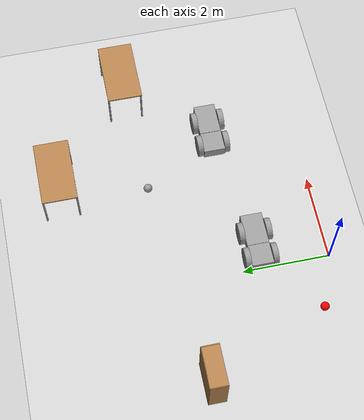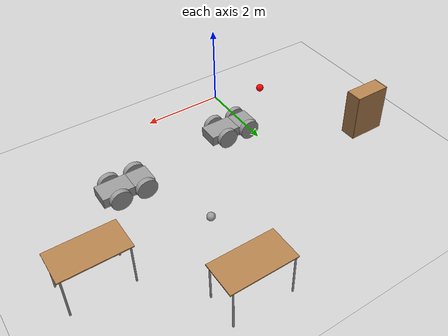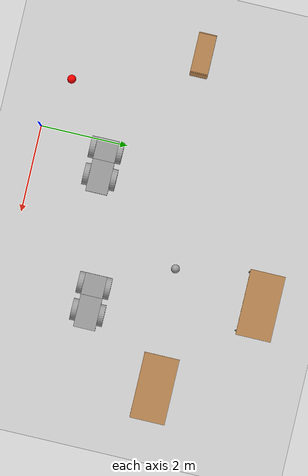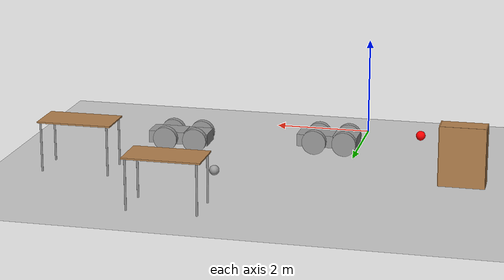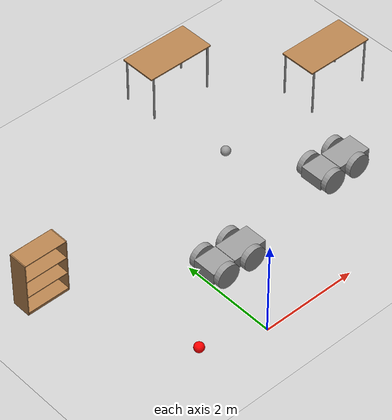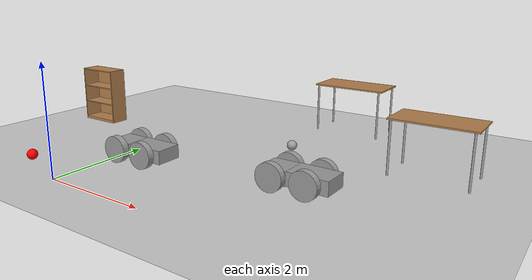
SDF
<sdf version="1.7">
 <world name="default">
  <model name="ground_plane">
   <static>1</static>
   <link name="link">
    <collision name="collision">
     <geometry><plane><normal>0 0 1</normal><size>100 100</size></plane></geometry>
     <surface><friction><ode><mu>100</mu><mu2>50</mu2></ode></friction></surface>
    </collision>
    <visual name="visual">
     <cast_shadows>0</cast_shadows>
     <geometry><plane><normal>0 0 1</normal><size>100 100</size></plane></geometry>
     <material>
      <script><uri>file://media/materials/scripts/gazebo.material</uri><name>Gazebo/Grey</name></script>
     </material>
    </visual>
   </link>
  </model>
  <model name="bookshelf">
   <static>1</static>
   <link name="link">
    <inertial><mass>1</mass></inertial>
    <collision name="back">
     <pose>0 0.005 0.6 0 -0 0</pose>
     <geometry><box><size>0.9 0.01 1.2</size></box></geometry>
    </collision>
    <visual name="visual1">
     <pose>0 0.005 0.6 0 -0 0</pose>
     <geometry><box><size>0.9 0.01 1.2</size></box></geometry>
     <material>
      <script><uri>file://media/materials/scripts/gazebo.material</uri><name>Gazebo/Wood</name></script>
     </material>
    </visual>
    <collision name="left_side">
     <pose>0.45 -0.195 0.6 0 -0 0</pose>
     <geometry><box><size>0.02 0.4 1.2</size></box></geometry>
    </collision>
    <visual name="visual2">
     <pose>0.45 -0.195 0.6 0 -0 0</pose>
     <geometry><box><size>0.02 0.4 1.2</size></box></geometry>
     <material>
      <script><uri>file://media/materials/scripts/gazebo.material</uri><name>Gazebo/Wood</name></script>
     </material>
    </visual>
    <collision name="right_side">
     <pose>-0.45 -0.195 0.6 0 -0 0</pose>
     <geometry><box><size>0.02 0.4 1.2</size></box></geometry>
    </collision>
    <visual name="visual3">
     <pose>-0.45 -0.195 0.6 0 -0 0</pose>
     <geometry><box><size>0.02 0.4 1.2</size></box></geometry>
     <material>
      <script><uri>file://media/materials/scripts/gazebo.material</uri><name>Gazebo/Wood</name></script>
     </material>
    </visual>
    <collision name="bottom">
     <pose>0 -0.195 0.03 0 -0 0</pose>
     <geometry><box><size>0.88 0.4 0.06</size></box></geometry>
    </collision>
    <visual name="visual4">
     <pose>0 -0.195 0.03 0 -0 0</pose>
     <geometry><box><size>0.88 0.4 0.06</size></box></geometry>
     <material>
      <script><uri>file://media/materials/scripts/gazebo.material</uri><name>Gazebo/Wood</name></script>
     </material>
    </visual>
    <collision name="top">
     <pose>0 -0.195 1.19 0 -0 0</pose>
     <geometry><box><size>0.88 0.4 0.02</size></box></geometry>
    </collision>
    <visual name="visual5">
     <pose>0 -0.195 1.19 0 -0 0</pose>
     <geometry><box><size>0.88 0.4 0.02</size></box></geometry>
     <material>
      <script><uri>file://media/materials/scripts/gazebo.material</uri><name>Gazebo/Wood</name></script>
     </material>
    </visual>
    <collision name="low_shelf">
     <pose>0 -0.195 0.43 0 -0 0</pose>
     <geometry><box><size>0.88 0.4 0.02</size></box></geometry>
    </collision>
    <visual name="visual6">
     <pose>0 -0.195 0.43 0 -0 0</pose>
     <geometry><box><size>0.88 0.4 0.02</size></box></geometry>
     <material>
      <script><uri>file://media/materials/scripts/gazebo.material</uri><name>Gazebo/Wood</name></script>
     </material>
    </visual>
    <collision name="high_shelf">
     <pose>0 -0.195 0.8 0 -0 0</pose>
     <geometry><box><size>0.88 0.4 0.02</size></box></geometry>
    </collision>
    <visual name="visual7">
     <pose>0 -0.195 0.8 0 -0 0</pose>
     <geometry><box><size>0.88 0.4 0.02</size></box></geometry>
     <material>
      <script><uri>file://media/materials/scripts/gazebo.material</uri><name>Gazebo/Wood</name></script>
     </material>
    </visual>
   </link>
   <pose>-2.35089 3.40239 0 0 -0 0</pose>
  </model>
  <model name="pj1_robo_1_clone_clone_0">
   <link name="link_0">
    <pose>-0.3125 0 -0.006249 0 -0 0</pose>
    <inertial>
     <mass>1</mass>
     <inertia>
      <ixx>0.166667</ixx>
      <ixy>0</ixy>
      <ixz>0</ixz>
      <iyy>0.166667</iyy>
      <iyz>0</iyz>
      <izz>0.166667</izz>
     </inertia>
    </inertial>
    <visual name="visual">
     <geometry><box><size>0.5 0.5 0.25</size></box></geometry>
     <material>
      <lighting>1</lighting>
      <script><uri>file://media/materials/scripts/gazebo.material</uri><name>Gazebo/Grey</name></script>
      <shader type="pixel"><normal_map>__default__</normal_map></shader>
      <ambient>0.3 0.3 0.3 1</ambient>
      <diffuse>0.7 0.7 0.7 1</diffuse>
      <specular>0.01 0.01 0.01 1</specular>
      <emissive>0 0 0 1</emissive>
     </material>
    </visual>
    <collision name="collision">
     <geometry><box><size>0.5 0.5 0.25</size></box></geometry>
     <surface>
      <friction>
       <ode><mu>1</mu><mu2>1</mu2><fdir1>0 0 0</fdir1><slip1>0</slip1><slip2>0</slip2></ode>
       <torsional>
        <coefficient>1</coefficient>
        <patch_radius>0</patch_radius>
        <surface_radius>0</surface_radius>
        <use_patch_radius>1</use_patch_radius>
        <ode><slip>0</slip></ode>
       </torsional>
      </friction>
      <bounce><restitution_coefficient>0</restitution_coefficient><threshold>1e+06</threshold></bounce>
      <contact>
       <collide_without_contact>0</collide_without_contact>
       <collide_without_contact_bitmask>1</collide_without_contact_bitmask>
       <collide_bitmask>1</collide_bitmask>
       <ode>
        <soft_cfm>0</soft_cfm>
        <soft_erp>0.2</soft_erp>
        <kp>1e+13</kp>
        <kd>1</kd>
        <max_vel>0.01</max_vel>
        <min_depth>0</min_depth>
       </ode>
       <bullet>
        <split_impulse>1</split_impulse>
        <split_impulse_penetration_threshold>-0.01</split_impulse_penetration_threshold>
        <soft_cfm>0</soft_cfm>
        <soft_erp>0.2</soft_erp>
        <kp>1e+13</kp>
        <kd>1</kd>
       </bullet>
      </contact>
     </surface>
    </collision>
   </link>
   <link name="link_0_clone">
    <pose>0.3125 0 0.001251 0 -0 0</pose>
    <inertial>
     <mass>1</mass>
     <inertia>
      <ixx>0.166667</ixx>
      <ixy>0</ixy>
      <ixz>0</ixz>
      <iyy>0.166667</iyy>
      <iyz>0</iyz>
      <izz>0.166667</izz>
     </inertia>
    </inertial>
    <visual name="visual">
     <geometry><box><size>0.75 0.5 0.25</size></box></geometry>
     <material>
      <lighting>1</lighting>
      <script><uri>file://media/materials/scripts/gazebo.material</uri><name>Gazebo/Grey</name></script>
      <shader type="pixel"><normal_map>__default__</normal_map></shader>
      <ambient>0.3 0.3 0.3 1</ambient>
      <diffuse>0.7 0.7 0.7 1</diffuse>
      <specular>0.01 0.01 0.01 1</specular>
      <emissive>0 0 0 1</emissive>
     </material>
    </visual>
    <collision name="collision">
     <geometry><box><size>0.75 0.5 0.25</size></box></geometry>
     <surface>
      <friction>
       <ode><mu>1</mu><mu2>1</mu2><fdir1>0 0 0</fdir1><slip1>0</slip1><slip2>0</slip2></ode>
       <torsional>
        <coefficient>1</coefficient>
        <patch_radius>0</patch_radius>
        <surface_radius>0</surface_radius>
        <use_patch_radius>1</use_patch_radius>
        <ode><slip>0</slip></ode>
       </torsional>
      </friction>
      <bounce><restitution_coefficient>0</restitution_coefficient><threshold>1e+06</threshold></bounce>
      <contact>
       <collide_without_contact>0</collide_without_contact>
       <collide_without_contact_bitmask>1</collide_without_contact_bitmask>
       <collide_bitmask>1</collide_bitmask>
       <ode>
        <soft_cfm>0</soft_cfm>
        <soft_erp>0.2</soft_erp>
        <kp>1e+13</kp>
        <kd>1</kd>
        <max_vel>0.01</max_vel>
        <min_depth>0</min_depth>
       </ode>
       <bullet>
        <split_impulse>1</split_impulse>
        <split_impulse_penetration_threshold>-0.01</split_impulse_penetration_threshold>
        <soft_cfm>0</soft_cfm>
        <soft_erp>0.2</soft_erp>
        <kp>1e+13</kp>
        <kd>1</kd>
       </bullet>
      </contact>
     </surface>
    </collision>
   </link>
   <link name="link_1">
    <pose>-0.3125 -0.312524 0.001247 1.5707 -0 0</pose>
    <inertial>
     <mass>1</mass>
     <inertia><ixx>0.145833</ixx><ixy>0</ixy><ixz>0</ixz><iyy>0.145833</iyy><iyz>0</iyz><izz>0.125</izz></inertia>
    </inertial>
    <visual name="visual">
     <geometry><cylinder><radius>0.25</radius><length>0.125</length></cylinder></geometry>
     <material>
      <lighting>1</lighting>
      <script><uri>file://media/materials/scripts/gazebo.material</uri><name>Gazebo/Grey</name></script>
      <shader type="pixel"><normal_map>__default__</normal_map></shader>
      <ambient>0.3 0.3 0.3 1</ambient>
      <diffuse>0.7 0.7 0.7 1</diffuse>
      <specular>0.01 0.01 0.01 1</specular>
      <emissive>0 0 0 1</emissive>
     </material>
    </visual>
    <collision name="collision">
     <geometry><cylinder><radius>0.25</radius><length>0.125</length></cylinder></geometry>
     <surface>
      <friction>
       <ode><mu>1</mu><mu2>1</mu2><fdir1>0 0 0</fdir1><slip1>0</slip1><slip2>0</slip2></ode>
       <torsional>
        <coefficient>1</coefficient>
        <patch_radius>0</patch_radius>
        <surface_radius>0</surface_radius>
        <use_patch_radius>1</use_patch_radius>
        <ode><slip>0</slip></ode>
       </torsional>
      </friction>
      <bounce><restitution_coefficient>0</restitution_coefficient><threshold>1e+06</threshold></bounce>
      <contact>
       <collide_without_contact>0</collide_without_contact>
       <collide_without_contact_bitmask>1</collide_without_contact_bitmask>
       <collide_bitmask>1</collide_bitmask>
       <ode>
        <soft_cfm>0</soft_cfm>
        <soft_erp>0.2</soft_erp>
        <kp>1e+13</kp>
        <kd>1</kd>
        <max_vel>0.01</max_vel>
        <min_depth>0</min_depth>
       </ode>
       <bullet>
        <split_impulse>1</split_impulse>
        <split_impulse_penetration_threshold>-0.01</split_impulse_penetration_threshold>
        <soft_cfm>0</soft_cfm>
        <soft_erp>0.2</soft_erp>
        <kp>1e+13</kp>
        <kd>1</kd>
       </bullet>
      </contact>
     </surface>
    </collision>
   </link>
   <link name="link_1_clone">
    <pose>-0.3125 0.312524 0.001251 1.5707 -0 0</pose>
    <inertial>
     <mass>1</mass>
     <inertia><ixx>0.145833</ixx><ixy>0</ixy><ixz>0</ixz><iyy>0.145833</iyy><iyz>0</iyz><izz>0.125</izz></inertia>
    </inertial>
    <visual name="visual">
     <geometry><cylinder><radius>0.25</radius><length>0.125</length></cylinder></geometry>
     <material>
      <lighting>1</lighting>
      <script><uri>file://media/materials/scripts/gazebo.material</uri><name>Gazebo/Grey</name></script>
      <shader type="pixel"><normal_map>__default__</normal_map></shader>
      <ambient>0.3 0.3 0.3 1</ambient>
      <diffuse>0.7 0.7 0.7 1</diffuse>
      <specular>0.01 0.01 0.01 1</specular>
      <emissive>0 0 0 1</emissive>
     </material>
    </visual>
    <collision name="collision">
     <geometry><cylinder><radius>0.25</radius><length>0.125</length></cylinder></geometry>
     <surface>
      <friction>
       <ode><mu>1</mu><mu2>1</mu2><fdir1>0 0 0</fdir1><slip1>0</slip1><slip2>0</slip2></ode>
       <torsional>
        <coefficient>1</coefficient>
        <patch_radius>0</patch_radius>
        <surface_radius>0</surface_radius>
        <use_patch_radius>1</use_patch_radius>
        <ode><slip>0</slip></ode>
       </torsional>
      </friction>
      <bounce><restitution_coefficient>0</restitution_coefficient><threshold>1e+06</threshold></bounce>
      <contact>
       <collide_without_contact>0</collide_without_contact>
       <collide_without_contact_bitmask>1</collide_without_contact_bitmask>
       <collide_bitmask>1</collide_bitmask>
       <ode>
        <soft_cfm>0</soft_cfm>
        <soft_erp>0.2</soft_erp>
        <kp>1e+13</kp>
        <kd>1</kd>
        <max_vel>0.01</max_vel>
        <min_depth>0</min_depth>
       </ode>
       <bullet>
        <split_impulse>1</split_impulse>
        <split_impulse_penetration_threshold>-0.01</split_impulse_penetration_threshold>
        <soft_cfm>0</soft_cfm>
        <soft_erp>0.2</soft_erp>
        <kp>1e+13</kp>
        <kd>1</kd>
       </bullet>
      </contact>
     </surface>
    </collision>
   </link>
   <link name="link_1_clone_0">
    <pose>0.3125 -0.312524 0.001251 1.5707 -0 0</pose>
    <inertial>
     <mass>1</mass>
     <inertia><ixx>0.145833</ixx><ixy>0</ixy><ixz>0</ixz><iyy>0.145833</iyy><iyz>0</iyz><izz>0.125</izz></inertia>
    </inertial>
    <visual name="visual">
     <geometry><cylinder><radius>0.25</radius><length>0.125</length></cylinder></geometry>
     <material>
      <lighting>1</lighting>
      <script><uri>file://media/materials/scripts/gazebo.material</uri><name>Gazebo/Grey</name></script>
      <shader type="pixel"><normal_map>__default__</normal_map></shader>
      <ambient>0.3 0.3 0.3 1</ambient>
      <diffuse>0.7 0.7 0.7 1</diffuse>
      <specular>0.01 0.01 0.01 1</specular>
      <emissive>0 0 0 1</emissive>
     </material>
    </visual>
    <collision name="collision">
     <geometry><cylinder><radius>0.25</radius><length>0.125</length></cylinder></geometry>
     <surface>
      <friction>
       <ode><mu>1</mu><mu2>1</mu2><fdir1>0 0 0</fdir1><slip1>0</slip1><slip2>0</slip2></ode>
       <torsional>
        <coefficient>1</coefficient>
        <patch_radius>0</patch_radius>
        <surface_radius>0</surface_radius>
        <use_patch_radius>1</use_patch_radius>
        <ode><slip>0</slip></ode>
       </torsional>
      </friction>
      <bounce><restitution_coefficient>0</restitution_coefficient><threshold>1e+06</threshold></bounce>
      <contact>
       <collide_without_contact>0</collide_without_contact>
       <collide_without_contact_bitmask>1</collide_without_contact_bitmask>
       <collide_bitmask>1</collide_bitmask>
       <ode>
        <soft_cfm>0</soft_cfm>
        <soft_erp>0.2</soft_erp>
        <kp>1e+13</kp>
        <kd>1</kd>
        <max_vel>0.01</max_vel>
        <min_depth>0</min_depth>
       </ode>
       <bullet>
        <split_impulse>1</split_impulse>
        <split_impulse_penetration_threshold>-0.01</split_impulse_penetration_threshold>
        <soft_cfm>0</soft_cfm>
        <soft_erp>0.2</soft_erp>
        <kp>1e+13</kp>
        <kd>1</kd>
       </bullet>
      </contact>
     </surface>
    </collision>
   </link>
   <link name="link_1_clone_1">
    <pose>0.3125 0.312524 0.001251 1.5707 -0 0</pose>
    <inertial>
     <mass>1</mass>
     <inertia><ixx>0.145833</ixx><ixy>0</ixy><ixz>0</ixz><iyy>0.145833</iyy><iyz>0</iyz><izz>0.125</izz></inertia>
    </inertial>
    <visual name="visual">
     <geometry><cylinder><radius>0.25</radius><length>0.125</length></cylinder></geometry>
     <material>
      <lighting>1</lighting>
      <script><uri>file://media/materials/scripts/gazebo.material</uri><name>Gazebo/Grey</name></script>
      <shader type="pixel"><normal_map>__default__</normal_map></shader>
      <ambient>0.3 0.3 0.3 1</ambient>
      <diffuse>0.7 0.7 0.7 1</diffuse>
      <specular>0.01 0.01 0.01 1</specular>
      <emissive>0 0 0 1</emissive>
     </material>
    </visual>
    <collision name="collision">
     <geometry><cylinder><radius>0.25</radius><length>0.125</length></cylinder></geometry>
     <surface>
      <friction>
       <ode><mu>1</mu><mu2>1</mu2><fdir1>0 0 0</fdir1><slip1>0</slip1><slip2>0</slip2></ode>
       <torsional>
        <coefficient>1</coefficient>
        <patch_radius>0</patch_radius>
        <surface_radius>0</surface_radius>
        <use_patch_radius>1</use_patch_radius>
        <ode><slip>0</slip></ode>
       </torsional>
      </friction>
      <bounce><restitution_coefficient>0</restitution_coefficient><threshold>1e+06</threshold></bounce>
      <contact>
       <collide_without_contact>0</collide_without_contact>
       <collide_without_contact_bitmask>1</collide_without_contact_bitmask>
       <collide_bitmask>1</collide_bitmask>
       <ode>
        <soft_cfm>0</soft_cfm>
        <soft_erp>0.2</soft_erp>
        <kp>1e+13</kp>
        <kd>1</kd>
        <max_vel>0.01</max_vel>
        <min_depth>0</min_depth>
       </ode>
       <bullet>
        <split_impulse>1</split_impulse>
        <split_impulse_penetration_threshold>-0.01</split_impulse_penetration_threshold>
        <soft_cfm>0</soft_cfm>
        <soft_erp>0.2</soft_erp>
        <kp>1e+13</kp>
        <kd>1</kd>
       </bullet>
      </contact>
     </surface>
    </collision>
   </link>
   <joint name="link_0_JOINT_1" type="fixed">
    <parent>link_0</parent>
    <child>link_0_clone</child>
    <physics>
     <ode><limit><cfm>0</cfm><erp>0.2</erp></limit><suspension><cfm>0</cfm><erp>0.2</erp></suspension></ode>
    </physics>
   </joint>
   <joint name="link_0_JOINT_2" type="revolute">
    <parent>link_0</parent>
    <child>link_1</child>
    <axis>
     <xyz>1 0 0</xyz>
     <limit>
      <lower>-1.79769e+308</lower>
      <upper>1.79769e+308</upper>
      <effort>-1</effort>
      <velocity>-1</velocity>
     </limit>
     <dynamics>
      <spring_reference>0</spring_reference>
      <spring_stiffness>0</spring_stiffness>
      <damping>0</damping>
     </dynamics>
    </axis>
    <physics>
     <ode><limit><cfm>0</cfm><erp>0.2</erp></limit><suspension><cfm>0</cfm><erp>0.2</erp></suspension></ode>
    </physics>
   </joint>
   <joint name="link_0_JOINT_3" type="revolute">
    <parent>link_0</parent>
    <child>link_1_clone</child>
    <axis>
     <xyz>1 0 0</xyz>
     <limit>
      <lower>-1.79769e+308</lower>
      <upper>1.79769e+308</upper>
      <effort>-1</effort>
      <velocity>-1</velocity>
     </limit>
     <dynamics>
      <spring_reference>0</spring_reference>
      <spring_stiffness>0</spring_stiffness>
      <damping>0</damping>
     </dynamics>
    </axis>
    <physics>
     <ode><limit><cfm>0</cfm><erp>0.2</erp></limit><suspension><cfm>0</cfm><erp>0.2</erp></suspension></ode>
    </physics>
   </joint>
   <joint name="link_0_clone_JOINT_4" type="revolute">
    <parent>link_0_clone</parent>
    <child>link_1_clone_1</child>
    <axis>
     <xyz>1 0 0</xyz>
     <limit>
      <lower>-1.79769e+308</lower>
      <upper>1.79769e+308</upper>
      <effort>-1</effort>
      <velocity>-1</velocity>
     </limit>
     <dynamics>
      <spring_reference>0</spring_reference>
      <spring_stiffness>0</spring_stiffness>
      <damping>0</damping>
     </dynamics>
    </axis>
    <physics>
     <ode><limit><cfm>0</cfm><erp>0.2</erp></limit><suspension><cfm>0</cfm><erp>0.2</erp></suspension></ode>
    </physics>
   </joint>
   <joint name="link_0_clone_JOINT_5" type="revolute">
    <parent>link_0_clone</parent>
    <child>link_1_clone_0</child>
    <axis>
     <xyz>1 0 0</xyz>
     <limit>
      <lower>-1.79769e+308</lower>
      <upper>1.79769e+308</upper>
      <effort>-1</effort>
      <velocity>-1</velocity>
     </limit>
     <dynamics>
      <spring_reference>0</spring_reference>
      <spring_stiffness>0</spring_stiffness>
      <damping>0</damping>
     </dynamics>
    </axis>
    <physics>
     <ode><limit><cfm>0</cfm><erp>0.2</erp></limit><suspension><cfm>0</cfm><erp>0.2</erp></suspension></ode>
    </physics>
   </joint>
   <static>0</static>
   <pose>0.519218 1.56404 0.24875 -3e-06 6e-06 0.000481</pose>
  </model>
  <model name="pj1_robo_1_clone_clone_1">
   <link name="link_0">
    <pose>-0.3125 0 -0.006249 0 -0 0</pose>
    <inertial>
     <mass>1</mass>
     <inertia>
      <ixx>0.166667</ixx>
      <ixy>0</ixy>
      <ixz>0</ixz>
      <iyy>0.166667</iyy>
      <iyz>0</iyz>
      <izz>0.166667</izz>
     </inertia>
    </inertial>
    <visual name="visual">
     <geometry><box><size>0.5 0.5 0.25</size></box></geometry>
     <material>
      <lighting>1</lighting>
      <script><uri>file://media/materials/scripts/gazebo.material</uri><name>Gazebo/Grey</name></script>
      <shader type="pixel"><normal_map>__default__</normal_map></shader>
      <ambient>0.3 0.3 0.3 1</ambient>
      <diffuse>0.7 0.7 0.7 1</diffuse>
      <specular>0.01 0.01 0.01 1</specular>
      <emissive>0 0 0 1</emissive>
     </material>
    </visual>
    <collision name="collision">
     <geometry><box><size>0.5 0.5 0.25</size></box></geometry>
     <surface>
      <friction>
       <ode><mu>1</mu><mu2>1</mu2><fdir1>0 0 0</fdir1><slip1>0</slip1><slip2>0</slip2></ode>
       <torsional>
        <coefficient>1</coefficient>
        <patch_radius>0</patch_radius>
        <surface_radius>0</surface_radius>
        <use_patch_radius>1</use_patch_radius>
        <ode><slip>0</slip></ode>
       </torsional>
      </friction>
      <bounce><restitution_coefficient>0</restitution_coefficient><threshold>1e+06</threshold></bounce>
      <contact>
       <collide_without_contact>0</collide_without_contact>
       <collide_without_contact_bitmask>1</collide_without_contact_bitmask>
       <collide_bitmask>1</collide_bitmask>
       <ode>
        <soft_cfm>0</soft_cfm>
        <soft_erp>0.2</soft_erp>
        <kp>1e+13</kp>
        <kd>1</kd>
        <max_vel>0.01</max_vel>
        <min_depth>0</min_depth>
       </ode>
       <bullet>
        <split_impulse>1</split_impulse>
        <split_impulse_penetration_threshold>-0.01</split_impulse_penetration_threshold>
        <soft_cfm>0</soft_cfm>
        <soft_erp>0.2</soft_erp>
        <kp>1e+13</kp>
        <kd>1</kd>
       </bullet>
      </contact>
     </surface>
    </collision>
   </link>
   <link name="link_0_clone">
    <pose>0.3125 0 0.001251 0 -0 0</pose>
    <inertial>
     <mass>1</mass>
     <inertia>
      <ixx>0.166667</ixx>
      <ixy>0</ixy>
      <ixz>0</ixz>
      <iyy>0.166667</iyy>
      <iyz>0</iyz>
      <izz>0.166667</izz>
     </inertia>
    </inertial>
    <visual name="visual">
     <geometry><box><size>0.75 0.5 0.25</size></box></geometry>
     <material>
      <lighting>1</lighting>
      <script><uri>file://media/materials/scripts/gazebo.material</uri><name>Gazebo/Grey</name></script>
      <shader type="pixel"><normal_map>__default__</normal_map></shader>
      <ambient>0.3 0.3 0.3 1</ambient>
      <diffuse>0.7 0.7 0.7 1</diffuse>
      <specular>0.01 0.01 0.01 1</specular>
      <emissive>0 0 0 1</emissive>
     </material>
    </visual>
    <collision name="collision">
     <geometry><box><size>0.75 0.5 0.25</size></box></geometry>
     <surface>
      <friction>
       <ode><mu>1</mu><mu2>1</mu2><fdir1>0 0 0</fdir1><slip1>0</slip1><slip2>0</slip2></ode>
       <torsional>
        <coefficient>1</coefficient>
        <patch_radius>0</patch_radius>
        <surface_radius>0</surface_radius>
        <use_patch_radius>1</use_patch_radius>
        <ode><slip>0</slip></ode>
       </torsional>
      </friction>
      <bounce><restitution_coefficient>0</restitution_coefficient><threshold>1e+06</threshold></bounce>
      <contact>
       <collide_without_contact>0</collide_without_contact>
       <collide_without_contact_bitmask>1</collide_without_contact_bitmask>
       <collide_bitmask>1</collide_bitmask>
       <ode>
        <soft_cfm>0</soft_cfm>
        <soft_erp>0.2</soft_erp>
        <kp>1e+13</kp>
        <kd>1</kd>
        <max_vel>0.01</max_vel>
        <min_depth>0</min_depth>
       </ode>
       <bullet>
        <split_impulse>1</split_impulse>
        <split_impulse_penetration_threshold>-0.01</split_impulse_penetration_threshold>
        <soft_cfm>0</soft_cfm>
        <soft_erp>0.2</soft_erp>
        <kp>1e+13</kp>
        <kd>1</kd>
       </bullet>
      </contact>
     </surface>
    </collision>
   </link>
   <link name="link_1">
    <pose>-0.3125 -0.312524 0.001247 1.5707 -0 0</pose>
    <inertial>
     <mass>1</mass>
     <inertia><ixx>0.145833</ixx><ixy>0</ixy><ixz>0</ixz><iyy>0.145833</iyy><iyz>0</iyz><izz>0.125</izz></inertia>
    </inertial>
    <visual name="visual">
     <geometry><cylinder><radius>0.25</radius><length>0.125</length></cylinder></geometry>
     <material>
      <lighting>1</lighting>
      <script><uri>file://media/materials/scripts/gazebo.material</uri><name>Gazebo/Grey</name></script>
      <shader type="pixel"><normal_map>__default__</normal_map></shader>
      <ambient>0.3 0.3 0.3 1</ambient>
      <diffuse>0.7 0.7 0.7 1</diffuse>
      <specular>0.01 0.01 0.01 1</specular>
      <emissive>0 0 0 1</emissive>
     </material>
    </visual>
    <collision name="collision">
     <geometry><cylinder><radius>0.25</radius><length>0.125</length></cylinder></geometry>
     <surface>
      <friction>
       <ode><mu>1</mu><mu2>1</mu2><fdir1>0 0 0</fdir1><slip1>0</slip1><slip2>0</slip2></ode>
       <torsional>
        <coefficient>1</coefficient>
        <patch_radius>0</patch_radius>
        <surface_radius>0</surface_radius>
        <use_patch_radius>1</use_patch_radius>
        <ode><slip>0</slip></ode>
       </torsional>
      </friction>
      <bounce><restitution_coefficient>0</restitution_coefficient><threshold>1e+06</threshold></bounce>
      <contact>
       <collide_without_contact>0</collide_without_contact>
       <collide_without_contact_bitmask>1</collide_without_contact_bitmask>
       <collide_bitmask>1</collide_bitmask>
       <ode>
        <soft_cfm>0</soft_cfm>
        <soft_erp>0.2</soft_erp>
        <kp>1e+13</kp>
        <kd>1</kd>
        <max_vel>0.01</max_vel>
        <min_depth>0</min_depth>
       </ode>
       <bullet>
        <split_impulse>1</split_impulse>
        <split_impulse_penetration_threshold>-0.01</split_impulse_penetration_threshold>
        <soft_cfm>0</soft_cfm>
        <soft_erp>0.2</soft_erp>
        <kp>1e+13</kp>
        <kd>1</kd>
       </bullet>
      </contact>
     </surface>
    </collision>
   </link>
   <link name="link_1_clone">
    <pose>-0.3125 0.312524 0.001251 1.5707 -0 0</pose>
    <inertial>
     <mass>1</mass>
     <inertia><ixx>0.145833</ixx><ixy>0</ixy><ixz>0</ixz><iyy>0.145833</iyy><iyz>0</iyz><izz>0.125</izz></inertia>
    </inertial>
    <visual name="visual">
     <geometry><cylinder><radius>0.25</radius><length>0.125</length></cylinder></geometry>
     <material>
      <lighting>1</lighting>
      <script><uri>file://media/materials/scripts/gazebo.material</uri><name>Gazebo/Grey</name></script>
      <shader type="pixel"><normal_map>__default__</normal_map></shader>
      <ambient>0.3 0.3 0.3 1</ambient>
      <diffuse>0.7 0.7 0.7 1</diffuse>
      <specular>0.01 0.01 0.01 1</specular>
      <emissive>0 0 0 1</emissive>
     </material>
    </visual>
    <collision name="collision">
     <geometry><cylinder><radius>0.25</radius><length>0.125</length></cylinder></geometry>
     <surface>
      <friction>
       <ode><mu>1</mu><mu2>1</mu2><fdir1>0 0 0</fdir1><slip1>0</slip1><slip2>0</slip2></ode>
       <torsional>
        <coefficient>1</coefficient>
        <patch_radius>0</patch_radius>
        <surface_radius>0</surface_radius>
        <use_patch_radius>1</use_patch_radius>
        <ode><slip>0</slip></ode>
       </torsional>
      </friction>
      <bounce><restitution_coefficient>0</restitution_coefficient><threshold>1e+06</threshold></bounce>
      <contact>
       <collide_without_contact>0</collide_without_contact>
       <collide_without_contact_bitmask>1</collide_without_contact_bitmask>
       <collide_bitmask>1</collide_bitmask>
       <ode>
        <soft_cfm>0</soft_cfm>
        <soft_erp>0.2</soft_erp>
        <kp>1e+13</kp>
        <kd>1</kd>
        <max_vel>0.01</max_vel>
        <min_depth>0</min_depth>
       </ode>
       <bullet>
        <split_impulse>1</split_impulse>
        <split_impulse_penetration_threshold>-0.01</split_impulse_penetration_threshold>
        <soft_cfm>0</soft_cfm>
        <soft_erp>0.2</soft_erp>
        <kp>1e+13</kp>
        <kd>1</kd>
       </bullet>
      </contact>
     </surface>
    </collision>
   </link>
   <link name="link_1_clone_0">
    <pose>0.3125 -0.312524 0.001251 1.5707 -0 0</pose>
    <inertial>
     <mass>1</mass>
     <inertia><ixx>0.145833</ixx><ixy>0</ixy><ixz>0</ixz><iyy>0.145833</iyy><iyz>0</iyz><izz>0.125</izz></inertia>
    </inertial>
    <visual name="visual">
     <geometry><cylinder><radius>0.25</radius><length>0.125</length></cylinder></geometry>
     <material>
      <lighting>1</lighting>
      <script><uri>file://media/materials/scripts/gazebo.material</uri><name>Gazebo/Grey</name></script>
      <shader type="pixel"><normal_map>__default__</normal_map></shader>
      <ambient>0.3 0.3 0.3 1</ambient>
      <diffuse>0.7 0.7 0.7 1</diffuse>
      <specular>0.01 0.01 0.01 1</specular>
      <emissive>0 0 0 1</emissive>
     </material>
    </visual>
    <collision name="collision">
     <geometry><cylinder><radius>0.25</radius><length>0.125</length></cylinder></geometry>
     <surface>
      <friction>
       <ode><mu>1</mu><mu2>1</mu2><fdir1>0 0 0</fdir1><slip1>0</slip1><slip2>0</slip2></ode>
       <torsional>
        <coefficient>1</coefficient>
        <patch_radius>0</patch_radius>
        <surface_radius>0</surface_radius>
        <use_patch_radius>1</use_patch_radius>
        <ode><slip>0</slip></ode>
       </torsional>
      </friction>
      <bounce><restitution_coefficient>0</restitution_coefficient><threshold>1e+06</threshold></bounce>
      <contact>
       <collide_without_contact>0</collide_without_contact>
       <collide_without_contact_bitmask>1</collide_without_contact_bitmask>
       <collide_bitmask>1</collide_bitmask>
       <ode>
        <soft_cfm>0</soft_cfm>
        <soft_erp>0.2</soft_erp>
        <kp>1e+13</kp>
        <kd>1</kd>
        <max_vel>0.01</max_vel>
        <min_depth>0</min_depth>
       </ode>
       <bullet>
        <split_impulse>1</split_impulse>
        <split_impulse_penetration_threshold>-0.01</split_impulse_penetration_threshold>
        <soft_cfm>0</soft_cfm>
        <soft_erp>0.2</soft_erp>
        <kp>1e+13</kp>
        <kd>1</kd>
       </bullet>
      </contact>
     </surface>
    </collision>
   </link>
   <link name="link_1_clone_1">
    <pose>0.3125 0.312524 0.001251 1.5707 -0 0</pose>
    <inertial>
     <mass>1</mass>
     <inertia><ixx>0.145833</ixx><ixy>0</ixy><ixz>0</ixz><iyy>0.145833</iyy><iyz>0</iyz><izz>0.125</izz></inertia>
    </inertial>
    <visual name="visual">
     <geometry><cylinder><radius>0.25</radius><length>0.125</length></cylinder></geometry>
     <material>
      <lighting>1</lighting>
      <script><uri>file://media/materials/scripts/gazebo.material</uri><name>Gazebo/Grey</name></script>
      <shader type="pixel"><normal_map>__default__</normal_map></shader>
      <ambient>0.3 0.3 0.3 1</ambient>
      <diffuse>0.7 0.7 0.7 1</diffuse>
      <specular>0.01 0.01 0.01 1</specular>
      <emissive>0 0 0 1</emissive>
     </material>
    </visual>
    <collision name="collision">
     <geometry><cylinder><radius>0.25</radius><length>0.125</length></cylinder></geometry>
     <surface>
      <friction>
       <ode><mu>1</mu><mu2>1</mu2><fdir1>0 0 0</fdir1><slip1>0</slip1><slip2>0</slip2></ode>
       <torsional>
        <coefficient>1</coefficient>
        <patch_radius>0</patch_radius>
        <surface_radius>0</surface_radius>
        <use_patch_radius>1</use_patch_radius>
        <ode><slip>0</slip></ode>
       </torsional>
      </friction>
      <bounce><restitution_coefficient>0</restitution_coefficient><threshold>1e+06</threshold></bounce>
      <contact>
       <collide_without_contact>0</collide_without_contact>
       <collide_without_contact_bitmask>1</collide_without_contact_bitmask>
       <collide_bitmask>1</collide_bitmask>
       <ode>
        <soft_cfm>0</soft_cfm>
        <soft_erp>0.2</soft_erp>
        <kp>1e+13</kp>
        <kd>1</kd>
        <max_vel>0.01</max_vel>
        <min_depth>0</min_depth>
       </ode>
       <bullet>
        <split_impulse>1</split_impulse>
        <split_impulse_penetration_threshold>-0.01</split_impulse_penetration_threshold>
        <soft_cfm>0</soft_cfm>
        <soft_erp>0.2</soft_erp>
        <kp>1e+13</kp>
        <kd>1</kd>
       </bullet>
      </contact>
     </surface>
    </collision>
   </link>
   <joint name="link_0_JOINT_1" type="fixed">
    <parent>link_0</parent>
    <child>link_0_clone</child>
    <physics>
     <ode><limit><cfm>0</cfm><erp>0.2</erp></limit><suspension><cfm>0</cfm><erp>0.2</erp></suspension></ode>
    </physics>
   </joint>
   <joint name="link_0_JOINT_2" type="revolute">
    <parent>link_0</parent>
    <child>link_1</child>
    <axis>
     <xyz>1 0 0</xyz>
     <limit>
      <lower>-1.79769e+308</lower>
      <upper>1.79769e+308</upper>
      <effort>-1</effort>
      <velocity>-1</velocity>
     </limit>
     <dynamics>
      <spring_reference>0</spring_reference>
      <spring_stiffness>0</spring_stiffness>
      <damping>0</damping>
     </dynamics>
    </axis>
    <physics>
     <ode><limit><cfm>0</cfm><erp>0.2</erp></limit><suspension><cfm>0</cfm><erp>0.2</erp></suspension></ode>
    </physics>
   </joint>
   <joint name="link_0_JOINT_3" type="revolute">
    <parent>link_0</parent>
    <child>link_1_clone</child>
    <axis>
     <xyz>1 0 0</xyz>
     <limit>
      <lower>-1.79769e+308</lower>
      <upper>1.79769e+308</upper>
      <effort>-1</effort>
      <velocity>-1</velocity>
     </limit>
     <dynamics>
      <spring_reference>0</spring_reference>
      <spring_stiffness>0</spring_stiffness>
      <damping>0</damping>
     </dynamics>
    </axis>
    <physics>
     <ode><limit><cfm>0</cfm><erp>0.2</erp></limit><suspension><cfm>0</cfm><erp>0.2</erp></suspension></ode>
    </physics>
   </joint>
   <joint name="link_0_clone_JOINT_4" type="revolute">
    <parent>link_0_clone</parent>
    <child>link_1_clone_1</child>
    <axis>
     <xyz>1 0 0</xyz>
     <limit>
      <lower>-1.79769e+308</lower>
      <upper>1.79769e+308</upper>
      <effort>-1</effort>
      <velocity>-1</velocity>
     </limit>
     <dynamics>
      <spring_reference>0</spring_reference>
      <spring_stiffness>0</spring_stiffness>
      <damping>0</damping>
     </dynamics>
    </axis>
    <physics>
     <ode><limit><cfm>0</cfm><erp>0.2</erp></limit><suspension><cfm>0</cfm><erp>0.2</erp></suspension></ode>
    </physics>
   </joint>
   <joint name="link_0_clone_JOINT_5" type="revolute">
    <parent>link_0_clone</parent>
    <child>link_1_clone_0</child>
    <axis>
     <xyz>1 0 0</xyz>
     <limit>
      <lower>-1.79769e+308</lower>
      <upper>1.79769e+308</upper>
      <effort>-1</effort>
      <velocity>-1</velocity>
     </limit>
     <dynamics>
      <spring_reference>0</spring_reference>
      <spring_stiffness>0</spring_stiffness>
      <damping>0</damping>
     </dynamics>
    </axis>
    <physics>
     <ode><limit><cfm>0</cfm><erp>0.2</erp></limit><suspension><cfm>0</cfm><erp>0.2</erp></suspension></ode>
    </physics>
   </joint>
   <static>0</static>
   <pose>3.56588 1.99921 0.24875 -3e-06 6e-06 0.000488</pose>
  </model>
  <model name="table">
   <static>1</static>
   <link name="link">
    <collision name="surface">
     <pose>0 0 1 0 -0 0</pose>
     <geometry><box><size>1.5 0.8 0.03</size></box></geometry>
     <surface><friction><ode><mu>0.6</mu><mu2>0.6</mu2></ode></friction></surface>
    </collision>
    <visual name="visual1">
     <pose>0 0 1 0 -0 0</pose>
     <geometry><box><size>1.5 0.8 0.03</size></box></geometry>
     <material>
      <script><uri>file://media/materials/scripts/gazebo.material</uri><name>Gazebo/Wood</name></script>
     </material>
    </visual>
    <collision name="front_left_leg">
     <pose>0.68 0.38 0.5 0 -0 0</pose>
     <geometry><cylinder><radius>0.02</radius><length>1</length></cylinder></geometry>
    </collision>
    <visual name="front_left_leg">
     <pose>0.68 0.38 0.5 0 -0 0</pose>
     <geometry><cylinder><radius>0.02</radius><length>1</length></cylinder></geometry>
     <material>
      <script><uri>file://media/materials/scripts/gazebo.material</uri><name>Gazebo/Grey</name></script>
     </material>
    </visual>
    <collision name="front_right_leg">
     <pose>0.68 -0.38 0.5 0 -0 0</pose>
     <geometry><cylinder><radius>0.02</radius><length>1</length></cylinder></geometry>
    </collision>
    <visual name="front_right_leg">
     <pose>0.68 -0.38 0.5 0 -0 0</pose>
     <geometry><cylinder><radius>0.02</radius><length>1</length></cylinder></geometry>
     <material>
      <script><uri>file://media/materials/scripts/gazebo.material</uri><name>Gazebo/Grey</name></script>
     </material>
    </visual>
    <collision name="back_right_leg">
     <pose>-0.68 -0.38 0.5 0 -0 0</pose>
     <geometry><cylinder><radius>0.02</radius><length>1</length></cylinder></geometry>
    </collision>
    <visual name="back_right_leg">
     <pose>-0.68 -0.38 0.5 0 -0 0</pose>
     <geometry><cylinder><radius>0.02</radius><length>1</length></cylinder></geometry>
     <material>
      <script><uri>file://media/materials/scripts/gazebo.material</uri><name>Gazebo/Grey</name></script>
     </material>
    </visual>
    <collision name="back_left_leg">
     <pose>-0.68 0.38 0.5 0 -0 0</pose>
     <geometry><cylinder><radius>0.02</radius><length>1</length></cylinder></geometry>
    </collision>
    <visual name="back_left_leg">
     <pose>-0.68 0.38 0.5 0 -0 0</pose>
     <geometry><cylinder><radius>0.02</radius><length>1</length></cylinder></geometry>
     <material>
      <script><uri>file://media/materials/scripts/gazebo.material</uri><name>Gazebo/Grey</name></script>
     </material>
    </visual>
   </link>
   <pose>5.17823 3.85378 0 0 -0 0</pose>
  </model>
  <model name="table_0">
   <static>1</static>
   <link name="link">
    <collision name="surface">
     <pose>0 0 1 0 -0 0</pose>
     <geometry><box><size>1.5 0.8 0.03</size></box></geometry>
     <surface><friction><ode><mu>0.6</mu><mu2>0.6</mu2></ode></friction></surface>
    </collision>
    <visual name="visual1">
     <pose>0 0 1 0 -0 0</pose>
     <geometry><box><size>1.5 0.8 0.03</size></box></geometry>
     <material>
      <script><uri>file://media/materials/scripts/gazebo.material</uri><name>Gazebo/Wood</name></script>
     </material>
    </visual>
    <collision name="front_left_leg">
     <pose>0.68 0.38 0.5 0 -0 0</pose>
     <geometry><cylinder><radius>0.02</radius><length>1</length></cylinder></geometry>
    </collision>
    <visual name="front_left_leg">
     <pose>0.68 0.38 0.5 0 -0 0</pose>
     <geometry><cylinder><radius>0.02</radius><length>1</length></cylinder></geometry>
     <material>
      <script><uri>file://media/materials/scripts/gazebo.material</uri><name>Gazebo/Grey</name></script>
     </material>
    </visual>
    <collision name="front_right_leg">
     <pose>0.68 -0.38 0.5 0 -0 0</pose>
     <geometry><cylinder><radius>0.02</radius><length>1</length></cylinder></geometry>
    </collision>
    <visual name="front_right_leg">
     <pose>0.68 -0.38 0.5 0 -0 0</pose>
     <geometry><cylinder><radius>0.02</radius><length>1</length></cylinder></geometry>
     <material>
      <script><uri>file://media/materials/scripts/gazebo.material</uri><name>Gazebo/Grey</name></script>
     </material>
    </visual>
    <collision name="back_right_leg">
     <pose>-0.68 -0.38 0.5 0 -0 0</pose>
     <geometry><cylinder><radius>0.02</radius><length>1</length></cylinder></geometry>
    </collision>
    <visual name="back_right_leg">
     <pose>-0.68 -0.38 0.5 0 -0 0</pose>
     <geometry><cylinder><radius>0.02</radius><length>1</length></cylinder></geometry>
     <material>
      <script><uri>file://media/materials/scripts/gazebo.material</uri><name>Gazebo/Grey</name></script>
     </material>
    </visual>
    <collision name="back_left_leg">
     <pose>-0.68 0.38 0.5 0 -0 0</pose>
     <geometry><cylinder><radius>0.02</radius><length>1</length></cylinder></geometry>
    </collision>
    <visual name="back_left_leg">
     <pose>-0.68 0.38 0.5 0 -0 0</pose>
     <geometry><cylinder><radius>0.02</radius><length>1</length></cylinder></geometry>
     <material>
      <script><uri>file://media/materials/scripts/gazebo.material</uri><name>Gazebo/Grey</name></script>
     </material>
    </visual>
   </link>
   <pose>2.83555 5.73932 0 0 -0 0</pose>
  </model>
  <model name="red_ball">
   <link name="link">
    <inertial>
     <mass>1</mass>
     <inertia><ixx>0.1</ixx><ixy>0</ixy><ixz>0</ixz><iyy>0.1</iyy><iyz>0</iyz><izz>0.1</izz></inertia>
    </inertial>
    <visual name="visual">
     <geometry><sphere><radius>0.1</radius></sphere></geometry>
     <material>
      <script><name>Gazebo/Grey</name><uri>file://media/materials/scripts/gazebo.material</uri></script>
      <shader type="pixel"><normal_map>__default__</normal_map></shader>
      <ambient>1 0 0 1</ambient>
      <diffuse>1 0 0 1</diffuse>
      <specular>1 0 0 1</specular>
      <emissive>0 0 0 1</emissive>
     </material>
    </visual>
    <collision name="collision">
     <geometry><sphere><radius>0.1</radius></sphere></geometry>
     <surface>
      <friction>
       <ode><mu>1</mu><mu2>1</mu2><fdir1>0 0 0</fdir1><slip1>0</slip1><slip2>0</slip2></ode>
       <torsional>
        <coefficient>1</coefficient>
        <patch_radius>0</patch_radius>
        <surface_radius>0</surface_radius>
        <use_patch_radius>1</use_patch_radius>
        <ode><slip>0</slip></ode>
       </torsional>
      </friction>
      <bounce><restitution_coefficient>0</restitution_coefficient><threshold>1e+06</threshold></bounce>
      <contact>
       <collide_without_contact>0</collide_without_contact>
       <collide_without_contact_bitmask>1</collide_without_contact_bitmask>
       <collide_bitmask>1</collide_bitmask>
       <ode>
        <soft_cfm>0</soft_cfm>
        <soft_erp>0.2</soft_erp>
        <kp>1e+13</kp>
        <kd>1</kd>
        <max_vel>0.01</max_vel>
        <min_depth>0</min_depth>
       </ode>
       <bullet>
        <split_impulse>1</split_impulse>
        <split_impulse_penetration_threshold>-0.01</split_impulse_penetration_threshold>
        <soft_cfm>0</soft_cfm>
        <soft_erp>0.2</soft_erp>
        <kp>1e+13</kp>
        <kd>1</kd>
       </bullet>
      </contact>
     </surface>
    </collision>
   </link>
   <static>0</static>
   <pose>-1.18769 0.427782 0.1 0 -0 0</pose>
  </model>
  <model name="white_ball">
   <link name="link">
    <inertial>
     <mass>1</mass>
     <inertia><ixx>0.1</ixx><ixy>0</ixy><ixz>0</ixz><iyy>0.1</iyy><iyz>0</iyz><izz>0.1</izz></inertia>
    </inertial>
    <visual name="visual">
     <geometry><sphere><radius>0.1</radius></sphere></geometry>
     <material>
      <script><name>Gazebo/Grey</name><uri>file://media/materials/scripts/gazebo.material</uri></script>
      <shader type="pixel"><normal_map>__default__</normal_map></shader>
      <ambient>1 1 1 1</ambient>
      <diffuse>1 1 1 1</diffuse>
      <specular>1 1 1 1</specular>
      <emissive>0 0 0 1</emissive>
     </material>
    </visual>
    <collision name="collision">
     <geometry><sphere><radius>0.1</radius></sphere></geometry>
     <surface>
      <friction>
       <ode><mu>1</mu><mu2>1</mu2><fdir1>0 0 0</fdir1><slip1>0</slip1><slip2>0</slip2></ode>
       <torsional>
        <coefficient>1</coefficient>
        <patch_radius>0</patch_radius>
        <surface_radius>0</surface_radius>
        <use_patch_radius>1</use_patch_radius>
        <ode><slip>0</slip></ode>
       </torsional>
      </friction>
      <bounce><restitution_coefficient>0</restitution_coefficient><threshold>1e+06</threshold></bounce>
      <contact>
       <collide_without_contact>0</collide_without_contact>
       <collide_without_contact_bitmask>1</collide_without_contact_bitmask>
       <collide_bitmask>1</collide_bitmask>
       <ode>
        <soft_cfm>0</soft_cfm>
        <soft_erp>0.2</soft_erp>
        <kp>1e+13</kp>
        <kd>1</kd>
        <max_vel>0.01</max_vel>
        <min_depth>0</min_depth>
       </ode>
       <bullet>
        <split_impulse>1</split_impulse>
        <split_impulse_penetration_threshold>-0.01</split_impulse_penetration_threshold>
        <soft_cfm>0</soft_cfm>
        <soft_erp>0.2</soft_erp>
        <kp>1e+13</kp>
        <kd>1</kd>
       </bullet>
      </contact>
     </surface>
    </collision>
   </link>
   <static>0</static>
   <pose>2.46726 3.70661 0.1 0 -0 0</pose>
  </model>
 </world>
</sdf>
